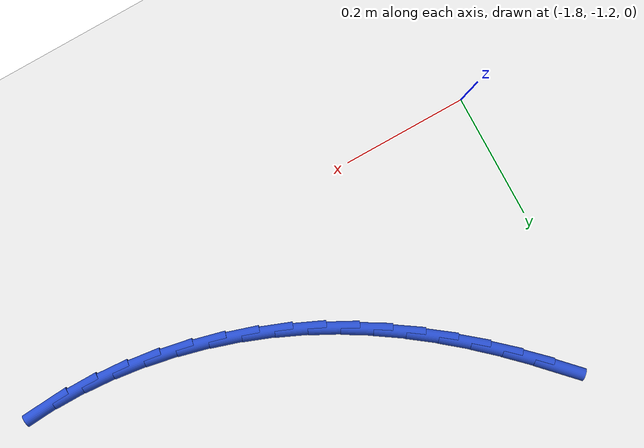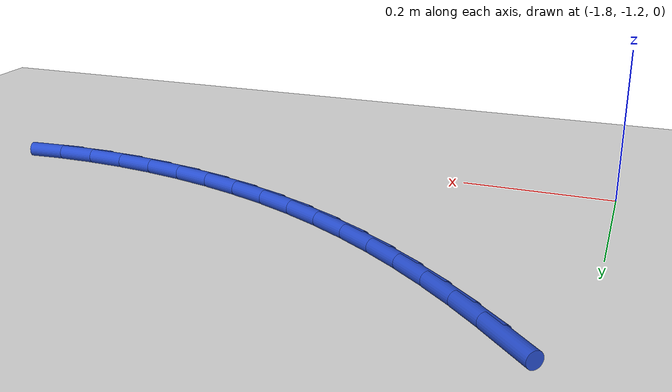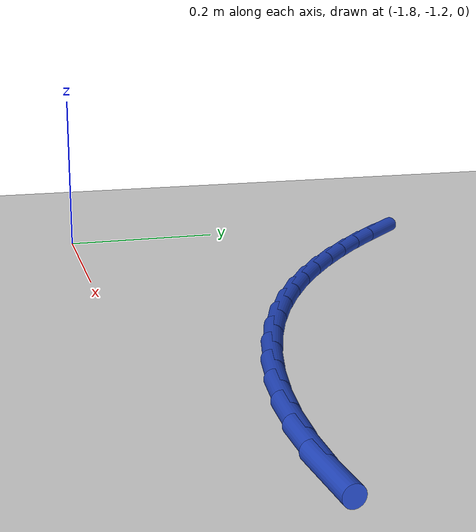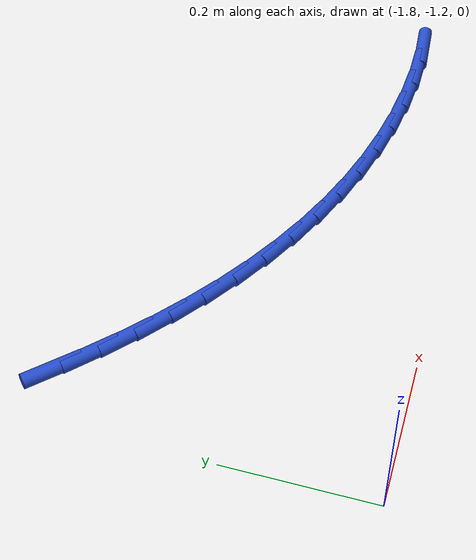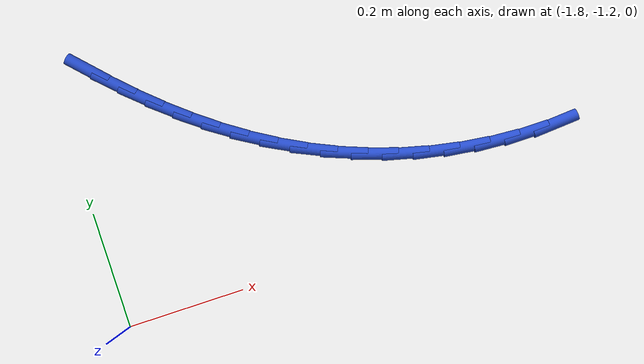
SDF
<sdf version="1.6">
 <world name="default">
  <model name="ground_plane">
   <static>1</static>
   <link name="link">
    <collision name="collision">
     <geometry><plane><normal>0 0 1</normal><size>100 100</size></plane></geometry>
     <surface><friction><ode><mu>100</mu><mu2>50</mu2></ode></friction></surface>
    </collision>
    <visual name="visual">
     <cast_shadows>0</cast_shadows>
     <geometry><plane><normal>0 0 1</normal><size>100 100</size></plane></geometry>
     <material>
      <script><uri>file://media/materials/scripts/gazebo.material</uri><name>Gazebo/WhiteGlow</name></script>
     </material>
    </visual>
   </link>
  </model>
  <model name="line">
   <link name="link_82">
    <pose>-1.7305169625963783 -0.7669166638448408 0.01 0 1.57 -0.8076719880720876</pose>
    <collision name="collision">
     <geometry><cylinder><radius>0.01</radius><length>0.08</length></cylinder></geometry>
    </collision>
    <visual name="visual">
     <material>
      <script><name>Gazebo/Blue</name><uri>file://media/materials/scripts/gazebo.material</uri></script>
     </material>
     <geometry><cylinder><radius>0.01</radius><length>0.08</length></cylinder></geometry>
    </visual>
   </link>
   <link name="link_83">
    <pose>-1.6955937831935897 -0.8034312998173536 0.01 0 1.57 -0.7711465385040301</pose>
    <collision name="collision">
     <geometry><cylinder><radius>0.01</radius><length>0.08</length></cylinder></geometry>
    </collision>
    <visual name="visual">
     <material>
      <script><name>Gazebo/Blue</name><uri>file://media/materials/scripts/gazebo.material</uri></script>
     </material>
     <geometry><cylinder><radius>0.01</radius><length>0.08</length></cylinder></geometry>
    </visual>
   </link>
   <link name="link_84">
    <pose>-1.6593646654517564 -0.8386422121122952 0.01 0 1.57 -0.731213345830327</pose>
    <collision name="collision">
     <geometry><cylinder><radius>0.01</radius><length>0.08</length></cylinder></geometry>
    </collision>
    <visual name="visual">
     <material>
      <script><name>Gazebo/Blue</name><uri>file://media/materials/scripts/gazebo.material</uri></script>
     </material>
     <geometry><cylinder><radius>0.01</radius><length>0.08</length></cylinder></geometry>
    </visual>
   </link>
   <link name="link_85">
    <pose>-1.6217779332427307 -0.8723614572336309 0.01 0 1.57 -0.6877812954748801</pose>
    <collision name="collision">
     <geometry><cylinder><radius>0.01</radius><length>0.08</length></cylinder></geometry>
    </collision>
    <visual name="visual">
     <material>
      <script><name>Gazebo/Blue</name><uri>file://media/materials/scripts/gazebo.material</uri></script>
     </material>
     <geometry><cylinder><radius>0.01</radius><length>0.08</length></cylinder></geometry>
    </visual>
   </link>
   <link name="link_86">
    <pose>-1.582781910438365 -0.9044010916853261 0.01 0 1.57 -0.6407958919623843</pose>
    <collision name="collision">
     <geometry><cylinder><radius>0.01</radius><length>0.08</length></cylinder></geometry>
    </collision>
    <visual name="visual">
     <material>
      <script><name>Gazebo/Blue</name><uri>file://media/materials/scripts/gazebo.material</uri></script>
     </material>
     <geometry><cylinder><radius>0.01</radius><length>0.08</length></cylinder></geometry>
    </visual>
   </link>
   <link name="link_87">
    <pose>-1.5423249209105125 -0.9345731719713447 0.01 0 1.57 -0.5902562423481659</pose>
    <collision name="collision">
     <geometry><cylinder><radius>0.01</radius><length>0.08</length></cylinder></geometry>
    </collision>
    <visual name="visual">
     <material>
      <script><name>Gazebo/Blue</name><uri>file://media/materials/scripts/gazebo.material</uri></script>
     </material>
     <geometry><cylinder><radius>0.01</radius><length>0.08</length></cylinder></geometry>
    </visual>
   </link>
   <link name="link_88">
    <pose>-1.5003552885310263 -0.962689754595652 0.01 0 1.57 -0.5362333004270082</pose>
    <collision name="collision">
     <geometry><cylinder><radius>0.01</radius><length>0.08</length></cylinder></geometry>
    </collision>
    <visual name="visual">
     <material>
      <script><name>Gazebo/Blue</name><uri>file://media/materials/scripts/gazebo.material</uri></script>
     </material>
     <geometry><cylinder><radius>0.01</radius><length>0.08</length></cylinder></geometry>
    </visual>
   </link>
   <link name="link_89">
    <pose>-1.4568213371717589 -0.988562896062213 0.01 0 1.57 -0.4788877043897245</pose>
    <collision name="collision">
     <geometry><cylinder><radius>0.01</radius><length>0.08</length></cylinder></geometry>
    </collision>
    <visual name="visual">
     <material>
      <script><name>Gazebo/Blue</name><uri>file://media/materials/scripts/gazebo.material</uri></script>
     </material>
     <geometry><cylinder><radius>0.01</radius><length>0.08</length></cylinder></geometry>
    </visual>
   </link>
   <link name="link_90">
    <pose>-1.411671391114039 -1.012004652989218 0.01 0 1.57 -0.4192062803380487</pose>
    <collision name="collision">
     <geometry><cylinder><radius>0.01</radius><length>0.08</length></cylinder></geometry>
    </collision>
    <visual name="visual">
     <material>
      <script><name>Gazebo/Blue</name><uri>file://media/materials/scripts/gazebo.material</uri></script>
     </material>
     <geometry><cylinder><radius>0.01</radius><length>0.08</length></cylinder></geometry>
    </visual>
   </link>
   <link name="link_91">
    <pose>-1.3649096393284996 -1.032842665716971 0.01 0 1.57 -0.35988250557324625</pose>
    <collision name="collision">
     <geometry><cylinder><radius>0.01</radius><length>0.08</length></cylinder></geometry>
    </collision>
    <visual name="visual">
     <material>
      <script><name>Gazebo/Blue</name><uri>file://media/materials/scripts/gazebo.material</uri></script>
     </material>
     <geometry><cylinder><radius>0.01</radius><length>0.08</length></cylinder></geometry>
    </visual>
   </link>
   <link name="link_92">
    <pose>-1.316750842229306 -1.0509633144964772 0.01 0 1.57 -0.30103399265966085</pose>
    <collision name="collision">
     <geometry><cylinder><radius>0.01</radius><length>0.08</length></cylinder></geometry>
    </collision>
    <visual name="visual">
     <material>
      <script><name>Gazebo/Blue</name><uri>file://media/materials/scripts/gazebo.material</uri></script>
     </material>
     <geometry><cylinder><radius>0.01</radius><length>0.08</length></cylinder></geometry>
    </visual>
   </link>
   <link name="link_93">
    <pose>-1.2674593650449446 -1.0662668170788077 0.01 0 1.57 -0.2420987585977865</pose>
    <collision name="collision">
     <geometry><cylinder><radius>0.01</radius><length>0.08</length></cylinder></geometry>
    </collision>
    <visual name="visual">
     <material>
      <script><name>Gazebo/Blue</name><uri>file://media/materials/scripts/gazebo.material</uri></script>
     </material>
     <geometry><cylinder><radius>0.01</radius><length>0.08</length></cylinder></geometry>
    </visual>
   </link>
   <link name="link_94">
    <pose>-1.2172995730039018 -1.078653391215033 0.01 0 1.57 -0.18252357722402496</pose>
    <collision name="collision">
     <geometry><cylinder><radius>0.01</radius><length>0.08</length></cylinder></geometry>
    </collision>
    <visual name="visual">
     <material>
      <script><name>Gazebo/Blue</name><uri>file://media/materials/scripts/gazebo.material</uri></script>
     </material>
     <geometry><cylinder><radius>0.01</radius><length>0.08</length></cylinder></geometry>
    </visual>
   </link>
   <link name="link_95">
    <pose>-1.1665358313346665 -1.0880232546562247 0.01 0 1.57 -0.1217618565183771</pose>
    <collision name="collision">
     <geometry><cylinder><radius>0.01</radius><length>0.08</length></cylinder></geometry>
    </collision>
    <visual name="visual">
     <material>
      <script><name>Gazebo/Blue</name><uri>file://media/materials/scripts/gazebo.material</uri></script>
     </material>
     <geometry><cylinder><radius>0.01</radius><length>0.08</length></cylinder></geometry>
    </visual>
   </link>
   <link name="link_96">
    <pose>-1.1154325052657261 -1.0942766251534535 0.01 0 1.57 -0.05927362045118712</pose>
    <collision name="collision">
     <geometry><cylinder><radius>0.01</radius><length>0.08</length></cylinder></geometry>
    </collision>
    <visual name="visual">
     <material>
      <script><name>Gazebo/Blue</name><uri>file://media/materials/scripts/gazebo.material</uri></script>
     </material>
     <geometry><cylinder><radius>0.01</radius><length>0.08</length></cylinder></geometry>
    </visual>
   </link>
   <link name="link_97">
    <pose>-1.0642539600255676 -1.097313720457791 0.01 0 1.57 0.005470928442723382</pose>
    <collision name="collision">
     <geometry><cylinder><radius>0.01</radius><length>0.08</length></cylinder></geometry>
    </collision>
    <visual name="visual">
     <material>
      <script><name>Gazebo/Blue</name><uri>file://media/materials/scripts/gazebo.material</uri></script>
     </material>
     <geometry><cylinder><radius>0.01</radius><length>0.08</length></cylinder></geometry>
    </visual>
   </link>
   <link name="link_98">
    <pose>-1.0132645608426782 -1.0970347583203077 0.01 0 1.57 0.07298257898649142</pose>
    <collision name="collision">
     <geometry><cylinder><radius>0.01</radius><length>0.08</length></cylinder></geometry>
    </collision>
    <visual name="visual">
     <material>
      <script><name>Gazebo/Blue</name><uri>file://media/materials/scripts/gazebo.material</uri></script>
     </material>
     <geometry><cylinder><radius>0.01</radius><length>0.08</length></cylinder></geometry>
    </visual>
   </link>
  </model>
 </world>
</sdf>
